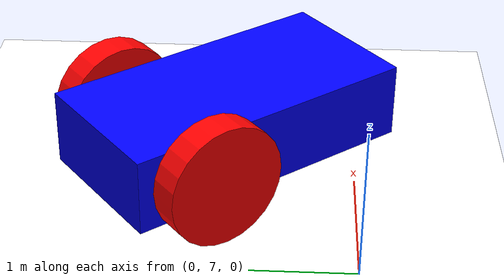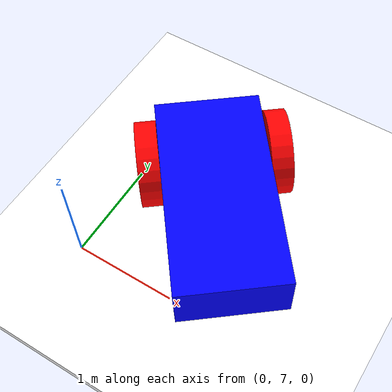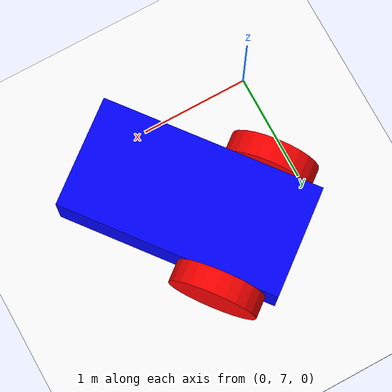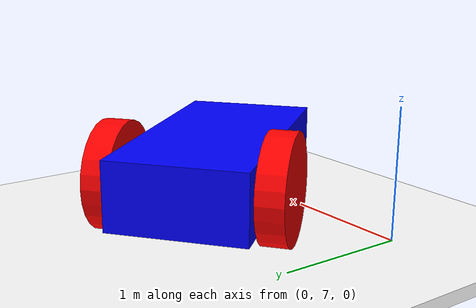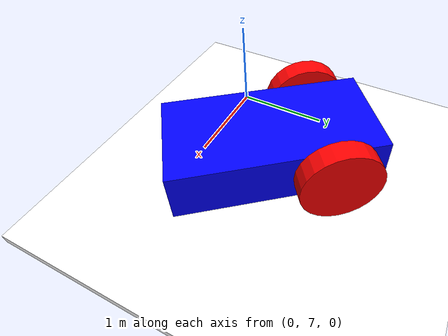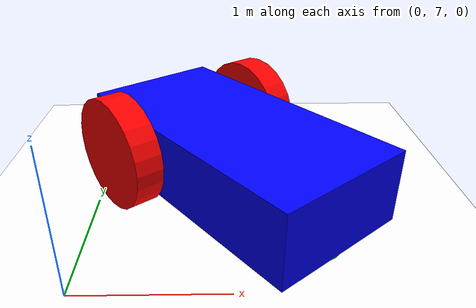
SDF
<sdf version="1.6">
 <world name="igvc_world">
  <physics name="1ms" type="ignored">
   <max_step_size>0.001</max_step_size>
   <real_time_factor>1.0</real_time_factor>
  </physics>
  <plugin filename="libignition-gazebo-physics-system" name="ignition::gazebo::systems::Physics"/>
  <plugin filename="libignition-gazebo-user-commands-system" name="ignition::gazebo::systems::UserCommands"/>
  <plugin filename="libignition-gazebo-scene-broadcaster-system" name="ignition::gazebo::systems::SceneBroadcaster"/>
  <plugin filename="libignition-gazebo-sensors-system" name="ignition::gazebo::systems::Sensors">
   <render_engine>ogre2</render_engine>
  </plugin>
  <light type="directional" name="sun">
   <pose>0 0 10 0 0 0</pose>
   <diffuse>1 1 1 1</diffuse>
   <specular>0.2 0.2 0.2 1</specular>
   <direction>-0.5 0.1 -0.9</direction>
  </light>
  <include><uri>model://floor</uri></include>
  <include><uri>model://dummy_blue</uri><pose>0.7 8.24 0.1 0 0 -0.9</pose></include>
 </world>
</sdf>

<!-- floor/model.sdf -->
<sdf version="1.6">
  <model name="custom_course">
    <static>true</static>
    <link name="link">
      <collision name="collision">
        <geometry>
          <box>
            <size>20 20 0.1</size> <!-- 20m x 20m wide, 10cm thick -->
          </box>
        </geometry>
      </collision>
      <visual name="visual">
        <geometry>
          <box>
            <size>20 20 0.1</size>
          </box>
        </geometry>
        <material>
          <ambient>1 1 1 1</ambient>
          <diffuse>1 1 1 1</diffuse>
          <specular>0.1 0.1 0.1 1</specular>
          <pbr>
            <metal>
              <albedo_map>floor_textures/curved-lanes.png</albedo_map>
              <roughness>1.0</roughness> <!-- 1.0 = Matte, 0.0 = Mirror -->
              <metalness>0.0</metalness>
            </metal>
          </pbr>
        </material>
      </visual>
    </link>
  </model>
</sdf>

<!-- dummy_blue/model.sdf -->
<sdf version="1.10">

<model name='little_blue' canonical_link='chassis'>
    <!--PLUGIN TO DIRVE ROBOT-->
    <plugin
        filename="libignition-gazebo-diff-drive-system"
        name="ignition::gazebo::systems::DiffDrive">
        <left_joint>left_wheel_joint</left_joint>
        <right_joint>right_wheel_joint</right_joint>
        <wheel_separation>1.2</wheel_separation>
        <wheel_radius>0.4</wheel_radius>
        <odom_publish_frequency>1</odom_publish_frequency>
        <topic>/cmd_vel</topic>
    </plugin>

    <!--PLUGIN FOR IMU-->
    <plugin filename="libignition-gazebo-imu-system"
            name="ignition::gazebo::systems::Imu">
    </plugin>

    <!--START TO BE DELETED-->
        <plugin filename="libignition-gazebo-triggered-publisher-system"
                name="ignition::gazebo::systems::TriggeredPublisher">
            <input type="ignition.msgs.Int32" topic="/keyboard/keypress">
                <match field="data">16777235</match>
            </input>
            <output type="ignition.msgs.Twist" topic="/cmd_vel">
                linear: {x: 0.5}, angular: {z: 0.0}
            </output>
        </plugin>

        <plugin filename="libignition-gazebo-triggered-publisher-system"
                name="ignition::gazebo::systems::TriggeredPublisher">
            <input type="ignition.msgs.Int32" topic="/keyboard/keypress">
                <match field="data">16777237</match>
            </input>
            <output type="ignition.msgs.Twist" topic="/cmd_vel">
                linear: {x: -0.5}, angular: {z: 0.0}
            </output>
        </plugin>

        <plugin filename="libignition-gazebo-triggered-publisher-system"
                name="ignition::gazebo::systems::TriggeredPublisher">
            <input type="ignition.msgs.Int32" topic="/keyboard/keypress">
                <match field="data">16777236</match>
            </input>
            <output type="ignition.msgs.Twist" topic="/cmd_vel">
                linear: {x: 0.0}, angular: {z: 0.5}
            </output>
        </plugin>

        <plugin filename="libignition-gazebo-triggered-publisher-system"
                name="ignition::gazebo::systems::TriggeredPublisher">
            <input type="ignition.msgs.Int32" topic="/keyboard/keypress">
                <match field="data">16777234</match>
            </input>
            <output type="ignition.msgs.Twist" topic="/cmd_vel">
                linear: {x: 0.0}, angular: {z: -0.5}
            </output>
        </plugin>
    <!--END TO BE DELETED-->

    <!--                               LINKS                                -->
    <link name='chassis'>
        <pose relative_to='__model__'>0.5 0 0.4 0 0 0</pose>
        <inertial> <!--inertial properties of the link mass, inertia matix-->
            <mass>1.14395</mass>
            <inertia>
                <ixx>0.095329</ixx>
                <ixy>0</ixy>
                <ixz>0</ixz>
                <iyy>0.381317</iyy>
                <iyz>0</iyz>
                <izz>0.476646</izz>
            </inertia>
        </inertial>
        <visual name='visual'>
            <geometry>
                <box>
                    <size>2.0 1.0 0.5</size>
                </box>
            </geometry>
            <!--let's add color to our link-->
            <material>
                <ambient>0.0 0.0 1.0 1</ambient>
                <diffuse>0.0 0.0 1.0 1</diffuse>
                <specular>0.0 0.0 1.0 1</specular>
            </material>
        </visual>
        <collision name='collision'>
            <geometry>
                <box>
                    <size>2.0 1.0 0.5</size>
                </box>
            </geometry>
        </collision>
        <!-- IMU -->
        <sensor name="imu_sensor" type="imu">
            <always_on>1</always_on>
            <update_rate>1</update_rate>
            <visualize>true</visualize>
            <topic>imu</topic>
        </sensor>
        <!-- LIDAR -->
        <sensor name='lidar' type='gpu_lidar'>
            <pose relative_to='chassis'>0.8 0 1 0 0 0</pose>
            <topic>lidar</topic>
            <update_rate>10</update_rate>
            <ray>
                <scan>
                    <horizontal>
                        <samples>640</samples>
                        <resolution>1</resolution>
                        <min_angle>-1.396263</min_angle>
                        <max_angle>1.396263</max_angle>
                    </horizontal>
                    <vertical>
                        <samples>1</samples>
                        <resolution>0.01</resolution>
                        <min_angle>0</min_angle>
                        <max_angle>0</max_angle>
                    </vertical>
                </scan>
                <range>
                    <min>0.08</min>
                    <max>10.0</max>
                    <resolution>0.01</resolution>
                </range>
            </ray>
            <always_on>1</always_on>
            <visualize>true</visualize>
        </sensor>

        <!-- LEFT CAMERA (RGB) -->
    <sensor name="camera_left" type="camera">
        <!-- Position: Front (1.0), Left (+0.1), Up (0.5) -->
        <pose relative_to="chassis">1.0 0.1 0.5 0 0 0</pose>
        <topic>camera/left/image_raw</topic>
        <update_rate>30</update_rate>
        <always_on>1</always_on>
        <visualize>true</visualize>
        <camera>
            <horizontal_fov>1.5</horizontal_fov> <!-- ~86 degrees -->
            <image>
                <width>640</width>
                <height>480</height>
                <format>R8G8B8</format>
            </image>
            <clip>
                <near>0.1</near>
                <far>100</far>
            </clip>
        </camera>
    </sensor>

    <!-- RIGHT CAMERA (RGB) -->
    <sensor name="camera_right" type="camera">
        <!-- Position: Front (1.0), Right (-0.1), Up (0.5) -->
        <pose relative_to="chassis">1.0 -0.1 0.5 0 0 0</pose>
        <topic>camera/right/image_raw</topic>
        <update_rate>30</update_rate>
        <always_on>1</always_on>
        <visualize>true</visualize>
        <camera>
            <horizontal_fov>1.5</horizontal_fov>
            <image>
                <width>640</width>
                <height>480</height>
                <format>R8G8B8</format>
            </image>
            <clip>
                <near>0.1</near>
                <far>100</far>
            </clip>
        </camera>
    </sensor>

    </link>

    <link name='left_wheel'>
        <pose relative_to="chassis">-0.5 0.6 0 -1.5707 0 0</pose>
        <inertial>
            <mass>1</mass>
            <inertia>
                <ixx>0.043333</ixx>
                <ixy>0</ixy>
                <ixz>0</ixz>
                <iyy>0.043333</iyy>
                <iyz>0</iyz>
                <izz>0.08</izz>
            </inertia>
        </inertial>
        <visual name='visual'>
            <geometry>
                <cylinder>
                    <radius>0.4</radius>
                    <length>0.2</length>
                </cylinder>
            </geometry>
            <material>
                <ambient>1.0 0.0 0.0 1</ambient>
                <diffuse>1.0 0.0 0.0 1</diffuse>
                <specular>1.0 0.0 0.0 1</specular>
            </material>
        </visual>
        <collision name='collision'>
            <geometry>
                <cylinder>
                    <radius>0.4</radius>
                    <length>0.2</length>
                </cylinder>
            </geometry>
        </collision>
    </link>

    <link name='right_wheel'>
        <pose relative_to="chassis">-0.5 -0.6 0 -1.5707 0 0</pose> <!--angles are in radian-->
        <inertial>
            <mass>1</mass>
            <inertia>
                <ixx>0.043333</ixx>
                <ixy>0</ixy>
                <ixz>0</ixz>
                <iyy>0.043333</iyy>
                <iyz>0</iyz>
                <izz>0.08</izz>
            </inertia>
        </inertial>
        <visual name='visual'>
            <geometry>
                <cylinder>
                    <radius>0.4</radius>
                    <length>0.2</length>
                </cylinder>
            </geometry>
            <material>
                <ambient>1.0 0.0 0.0 1</ambient>
                <diffuse>1.0 0.0 0.0 1</diffuse>
                <specular>1.0 0.0 0.0 1</specular>
            </material>
        </visual>
        <collision name='collision'>
            <geometry>
                <cylinder>
                    <radius>0.4</radius>
                    <length>0.2</length>
                </cylinder>
            </geometry>
        </collision>
    </link>

    <frame name="caster_frame" attached_to='chassis'>
        <pose>0.8 0 -0.2 0 0 0</pose>
    </frame>
    <!--caster wheel-->
    <link name='caster'>
        <pose relative_to='caster_frame'/>
        <inertial>
            <mass>1</mass>
            <inertia>
                <ixx>0.016</ixx>
                <ixy>0</ixy>
                <ixz>0</ixz>
                <iyy>0.016</iyy>
                <iyz>0</iyz>
                <izz>0.016</izz>
            </inertia>
        </inertial>
        <visual name='visual'>
            <geometry>
                <sphere>
                    <radius>0.2</radius>
                </sphere>
            </geometry>
            <material>
                <ambient>0.0 1 0.0 1</ambient>
                <diffuse>0.0 1 0.0 1</diffuse>
                <specular>0.0 1 0.0 1</specular>
            </material>
        </visual>
        <collision name='collision'>
            <geometry>
                <sphere>
                    <radius>0.2</radius>
                </sphere>
            </geometry>
        </collision>
    </link>
    <!--                               JOINTS                               -->
    <joint name='left_wheel_joint' type='revolute'>
        <pose relative_to='left_wheel'/>
        <parent>chassis</parent>
        <child>left_wheel</child>
        <axis>
            <xyz expressed_in='__model__'>0 1 0</xyz> <!--can be defined as any frame or even arbitrary frames-->
            <limit>
                <lower>-1.79769e+308</lower>    <!--negative infinity-->
                <upper>1.79769e+308</upper>     <!--positive infinity-->
            </limit>
        </axis>
    </joint>

    <joint name='right_wheel_joint' type='revolute'>
        <pose relative_to='right_wheel'/>
        <parent>chassis</parent>
        <child>right_wheel</child>
        <axis>
            <xyz expressed_in='__model__'>0 1 0</xyz>
            <limit>
                <lower>-1.79769e+308</lower>    <!--negative infinity-->
                <upper>1.79769e+308</upper>     <!--positive infinity-->
            </limit>
        </axis>
    </joint>

    <joint name='caster_wheel' type='ball'>
        <parent>chassis</parent>
        <child>caster</child>
    </joint>

</model>
</sdf>
